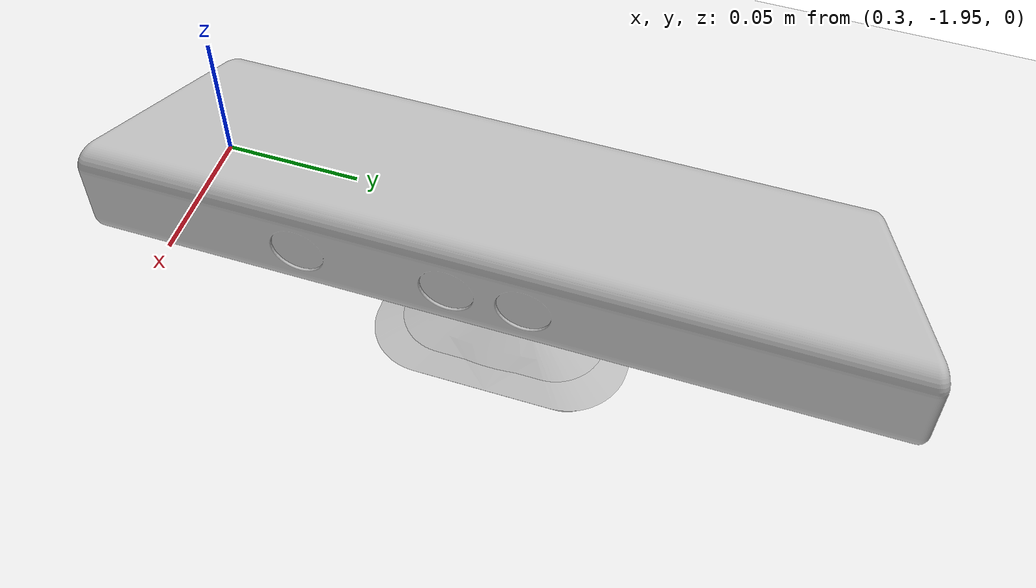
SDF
<sdf version="1.6">
 <world name="default">
  <light name="sun" type="directional">
   <pose>0 0 10 0 -0 0</pose>
   <diffuse>0.8 0.8 0.8 1</diffuse>
   <specular>0.2 0.2 0.2 1</specular>
   <attenuation>
    <range>1000</range>
    <constant>0.9</constant>
    <linear>0.01</linear>
    <quadratic>0.001</quadratic>
   </attenuation>
   <direction>-0.5 0.1 -0.9</direction>
  </light>
  <model name="ground_plane">
   <static>1</static>
   <link name="link">
    <collision name="collision">
     <geometry><plane><normal>0 0 1</normal><size>100 100</size></plane></geometry>
     <surface>
      <contact><collide_bitmask>65535</collide_bitmask></contact>
      <friction><ode><mu>100</mu><mu2>50</mu2></ode></friction>
     </surface>
    </collision>
    <visual name="visual">
     <cast_shadows>0</cast_shadows>
     <geometry><plane><normal>0 0 1</normal><size>100 100</size></plane></geometry>
     <material>
      <script><uri>file://media/materials/scripts/gazebo.material</uri><name>Gazebo/Grey</name></script>
     </material>
    </visual>
   </link>
  </model>
  <gravity>0 0 -9.8</gravity>
  <magnetic_field>6e-06 2.3e-05 -4.2e-05</magnetic_field>
  <atmosphere type="adiabatic"/>
  <physics name="default_physics" default="0" type="ode">
   <max_step_size>0.001</max_step_size>
   <real_time_factor>1</real_time_factor>
   <real_time_update_rate>1000</real_time_update_rate>
  </physics>
  <scene><ambient>0.4 0.4 0.4 1</ambient><background>0.7 0.7 0.7 1</background><shadows>1</shadows></scene>
  <audio><device>default</device></audio>
  <spherical_coordinates>
   <surface_model>EARTH_WGS84</surface_model>
   <latitude_deg>0</latitude_deg>
   <longitude_deg>0</longitude_deg>
   <elevation>0</elevation>
   <heading_deg>0</heading_deg>
  </spherical_coordinates>
  <model name="kinect">
   <pose>0.364058 -1.82823 0.036 1e-06 3e-06 -0</pose>
   <link name="link">
    <inertial>
     <mass>0.1</mass>
     <inertia><ixx>1</ixx><ixy>0</ixy><ixz>0</ixz><iyy>1</iyy><iyz>0</iyz><izz>1</izz></inertia>
    </inertial>
    <collision name="collision"><geometry><box><size>0.073 0.276 0.072</size></box></geometry></collision>
    <visual name="visual"><geometry><mesh><uri>model://kinect/meshes/kinect.dae</uri></mesh></geometry></visual>
    <sensor name="camera" type="depth">
     <update_rate>20</update_rate>
     <camera name="__default__">
      <horizontal_fov>1.0472</horizontal_fov>
      <image><width>640</width><height>480</height><format>R8G8B8</format></image>
      <clip><near>0.05</near><far>3</far></clip>
     </camera>
    </sensor>
   </link>
  </model>
 </world>
</sdf>
